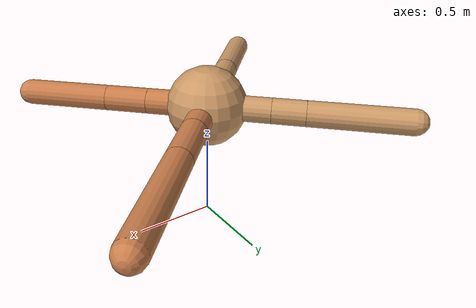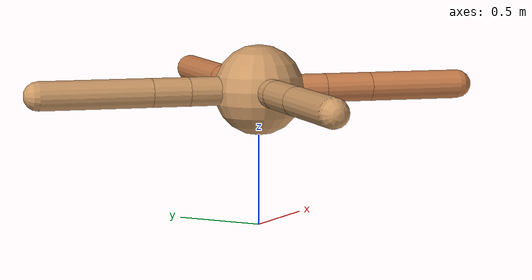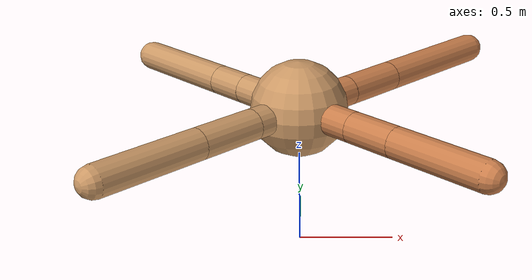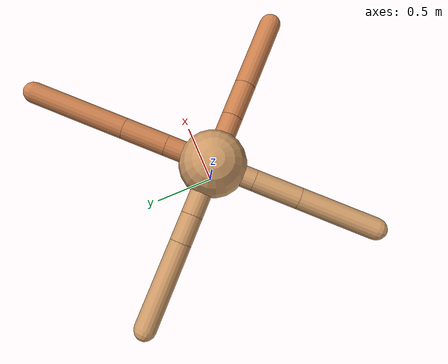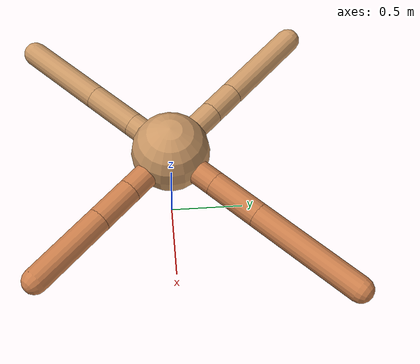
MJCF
<mujoco model="ant">
  <compiler angle="degree" coordinate="local" inertiafromgeom="true" />
  <option integrator="RK4" timestep="0.01" />
  <custom>
    <numeric data="0.0 0.0 0.55 1.0 0.0 0.0 0.0 0.0 1.0 0.0 -1.0 0.0 -1.0 0.0 1.0" name="init_qpos" />
  </custom>
  <default>
    <joint armature="1" damping="1" limited="true" />
    <geom conaffinity="0" condim="3" density="5.0" friction="1.5 0.1 0.1" margin="0.01" rgba="0.8 0.6 0.4 1" />
  </default>
  <worldbody>
    <body name="torso" pos="0 0 0.75">
      <geom name="torso_geom" pos="0 0 0" size="0.25" type="sphere" />

      <body name="front_left_leg" pos="0 0 0">
        <geom fromto="0.0 0.0 0.0 0.25675725498293084 0.25675725498293084 0.0" name="aux_1_geom" size="0.08" type="capsule" rgba=".8 .5 .3 1" />
        <body name="aux_1" pos="0.25675725498293084 0.25675725498293084 0.0">
          <joint axis="0 0 1" name="hip_1" pos="0.0 0.0 0.0" range="-40 40" type="hinge" />
          <geom fromto="0.0 0.0 0.0 0.23670497445328378 0.23670497445328378 0.0" name="left_leg_geom" size="0.08" type="capsule" rgba=".8 .5 .3 1" />
          <body pos="0.23670497445328378 0.23670497445328378 0.0" name="front_left_foot">
            <joint axis="-1 1 0" name="ankle_1" pos="0.0 0.0 0.0" range="30 100" type="hinge" />
            <geom fromto="0.0 0.0 0.0 0.5205576805138552 0.5205576805138552 0.0" name="left_ankle_geom" size="0.08" type="capsule" rgba=".8 .5 .3 1" />
          </body>
        </body>
      </body>
      <body name="front_right_leg" pos="0 0 0">
        <geom fromto="0.0 0.0 0.0 -0.28378296479007153 0.28378296479007153 0.0" name="aux_2_geom" size="0.08" type="capsule" />
        <body name="aux_2" pos="-0.28378296479007153 0.28378296479007153 0.0">
          <joint axis="0 0 1" name="hip_2" pos="0.0 0.0 0.0" range="-40 40" type="hinge" />
          <geom fromto="0.0 0.0 0.0 -0.1471847516415706 0.1471847516415706 0.0" name="right_leg_geom" size="0.08" type="capsule" />
          <body pos="-0.1471847516415706 0.1471847516415706 0.0" name="front_right_foot">
            <joint axis="1 1 0" name="ankle_2" pos="0.0 0.0 0.0" range="-100 -30" type="hinge" />
            <geom fromto="0.0 0.0 0.0 -0.44037600466797955 0.44037600466797955 0.0" name="right_ankle_geom" size="0.08" type="capsule" />
          </body>
        </body>
      </body>
      <body name="left_back_leg" pos="0 0 0">
        <geom fromto="0.0 0.0 0.0 -0.22589450448751638 -0.22589450448751638 0.0" name="aux_3_geom" size="0.08" type="capsule" />
        <body name="aux_3" pos="-0.22589450448751638 -0.22589450448751638 0.0">
          <joint axis="0 0 1" name="hip_3" pos="0.0 0.0 0.0" range="-40 40" type="hinge" />
          <geom fromto="0.0 0.0 0.0 -0.2407274286782024 -0.2407274286782024 0.0" name="back_leg_geom" size="0.08" type="capsule" />
          <body pos="-0.2407274286782024 -0.2407274286782024 0.0" name="left_back_foot">
            <joint axis="-1 1 0" name="ankle_3" pos="0.0 0.0 0.0" range="-100 -30" type="hinge" />
            <geom fromto="0.0 0.0 0.0 -0.4068951725179255 -0.4068951725179255 0.0" name="third_ankle_geom" size="0.08" type="capsule" />
          </body>
        </body>
      </body>
      <body name="right_back_leg" pos="0 0 0">
        <geom fromto="0.0 0.0 0.0 0.267392311376518 -0.267392311376518 0.0" name="aux_4_geom" size="0.08" type="capsule" rgba=".8 .5 .3 1" />
        <body name="aux_4" pos="0.267392311376518 -0.267392311376518 0.0">
          <joint axis="0 0 1" name="hip_4" pos="0.0 0.0 0.0" range="-40 40" type="hinge" />
          <geom fromto="0.0 0.0 0.0 0.1883569919378133 -0.1883569919378133 0.0" name="rightback_leg_geom" size="0.08" type="capsule" rgba=".8 .5 .3 1" />
          <body pos="0.1883569919378133 -0.1883569919378133 0.0" name="right_back_foot">
            <joint axis="1 1 0" name="ankle_4" pos="0.0 0.0 0.0" range="30 100" type="hinge" />
            <geom fromto="0.0 0.0 0.0 0.3731951132018909 -0.3731951132018909 0.0" name="fourth_ankle_geom" size="0.08" type="capsule" rgba=".8 .5 .3 1" />
          </body>
        </body>
      </body>
    </body>
  </worldbody>
  <actuator>
    <motor ctrllimited="true" ctrlrange="-1.0 1.0" joint="hip_4" gear="150" />
    <motor ctrllimited="true" ctrlrange="-1.0 1.0" joint="ankle_4" gear="150" />
    <motor ctrllimited="true" ctrlrange="-1.0 1.0" joint="hip_1" gear="150" />
    <motor ctrllimited="true" ctrlrange="-1.0 1.0" joint="ankle_1" gear="150" />
    <motor ctrllimited="true" ctrlrange="-1.0 1.0" joint="hip_2" gear="150" />
    <motor ctrllimited="true" ctrlrange="-1.0 1.0" joint="ankle_2" gear="150" />
    <motor ctrllimited="true" ctrlrange="-1.0 1.0" joint="hip_3" gear="150" />
    <motor ctrllimited="true" ctrlrange="-1.0 1.0" joint="ankle_3" gear="150" />
  </actuator>
</mujoco>
